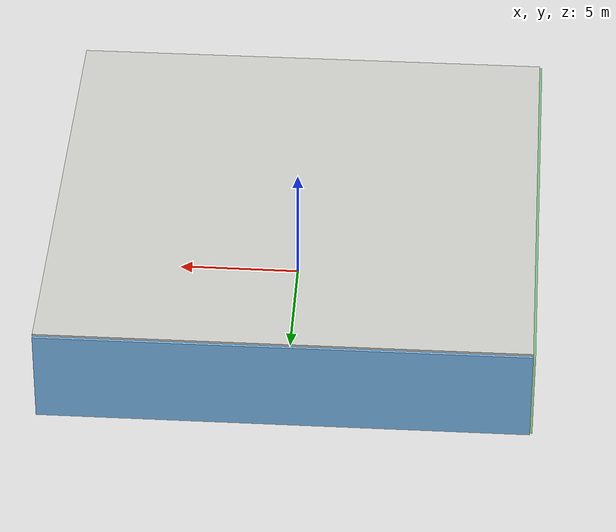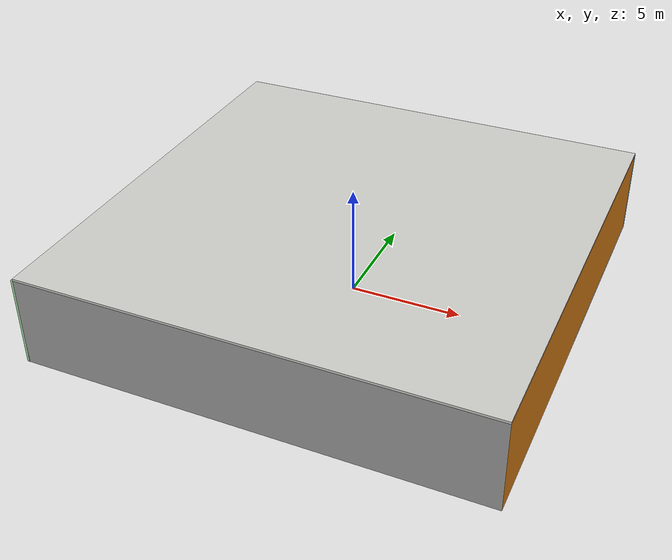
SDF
<sdf version="1.4">
 <world name="default">
  <physics type="ode">
   <max_step_size>0.001</max_step_size>
   <real_time_factor>1</real_time_factor>
   <real_time_update_rate>1000</real_time_update_rate>
   <gravity>0 0 -9.8</gravity>
  </physics>
  <scene><ambient>0.4 0.4 0.4 1</ambient><background>0.7 0.7 0.7 1</background><shadows>1</shadows></scene>
  <model name="Surrounding">
   <static>1</static>
   <link name="Ceiling">
    <collision name="Ceiling_Collision"><geometry><box><size>20 20 0.1</size></box></geometry></collision>
    <visual name="Ceiling_Visual">
     <geometry><box><size>20 20 0.1</size></box></geometry>
     <material>
      <script><uri>file://media/materials/scripts/gazebo.material</uri><name>Gazebo/CeilingTiled</name></script>
     </material>
    </visual>
    <pose>0 0 4.05 0 0 0</pose>
   </link>
   <link name="Wall_South">
    <collision name="Wall_South_Collision">
     <geometry><box><size>20 0 4</size></box></geometry>
     <pose>0 0 2 0 -0 0</pose>
    </collision>
    <visual name="Wall_South_Visual">
     <pose>0 0 2 0 -0 0</pose>
     <geometry><box><size>20 0 4</size></box></geometry>
     <material>
      <script><uri>file://media/materials/scripts/gazebo.material</uri><name>Gazebo/Grey</name></script>
     </material>
    </visual>
    <velocity_decay><linear>0</linear><angular>0</angular></velocity_decay>
    <pose>0 -10 0 0 -0 0</pose>
   </link>
   <link name="Wall_East">
    <collision name="Wall_21_Collision">
     <geometry><box><size>20 0 4</size></box></geometry>
     <pose>0 0 2 0 -0 0</pose>
    </collision>
    <visual name="Wall_21_Visual">
     <pose>0 0 2 0 -0 0</pose>
     <geometry><box><size>20 0 4</size></box></geometry>
     <material>
      <script><uri>file://media/materials/scripts/gazebo.material</uri><name>Gazebo/Orange</name></script>
     </material>
    </visual>
    <velocity_decay><linear>0</linear><angular>0</angular></velocity_decay>
    <pose>10 0 0 0 -0 1.5708</pose>
   </link>
   <link name="Wall_North">
    <collision name="Wall_22_Collision">
     <geometry><box><size>20 0.2 4</size></box></geometry>
     <pose>0 0 2 0 -0 0</pose>
    </collision>
    <visual name="Wall_22_Visual">
     <pose>0 0 2 0 -0 0</pose>
     <geometry><box><size>20 0.2 4</size></box></geometry>
     <material>
      <script><uri>file://media/materials/scripts/gazebo.material</uri><name>Gazebo/SkyBlue</name></script>
     </material>
    </visual>
    <velocity_decay><linear>0</linear><angular>0</angular></velocity_decay>
    <pose>0 10 0 0 -0 0</pose>
   </link>
   <link name="Wall_West">
    <collision name="Wall_23_Collision">
     <geometry><box><size>20 0.2 4</size></box></geometry>
     <pose>0 0 2 0 -0 0</pose>
    </collision>
    <visual name="Wall_23_Visual">
     <pose>0 0 2 0 -0 0</pose>
     <geometry><box><size>20 0.2 4</size></box></geometry>
     <material>
      <script><uri>file://media/materials/scripts/gazebo.material</uri><name>Gazebo/GreenTransparent</name></script>
     </material>
    </visual>
    <velocity_decay><linear>0</linear><angular>0</angular></velocity_decay>
    <pose>-10 0 0 0 0 -1.5708</pose>
   </link>
   <link name="Ground_link">
    <collision name="collision">
     <pose>0 0 .05 0 -0 0</pose>
     <geometry><box><size>20 20 0.1</size></box></geometry>
    </collision>
    <visual name="visual">
     <pose>0 0 .05 0 -0 0</pose>
     <geometry><box><size>20 20 0.1</size></box></geometry>
     <material>
      <script><uri>file://media/materials/scripts/gazebo.material</uri><name>Gazebo/FlatBlack</name></script>
     </material>
    </visual>
   </link>
   <static>1</static>
  </model>
  <spherical_coordinates>
   <surface_model>EARTH_WGS84</surface_model>
   <latitude_deg>0</latitude_deg>
   <longitude_deg>0</longitude_deg>
   <elevation>0</elevation>
   <heading_deg>0</heading_deg>
  </spherical_coordinates>
  <light name="lightball_0" type="diffuse">
   <diffuse>0.8 0.8 0.8 1</diffuse>
   <specular>0.2 0.2 0.2 1</specular>
   <attenuation>
    <range>100</range>
    <constant>0.7</constant>
    <linear>0.01</linear>
    <quadratic>0.001</quadratic>
   </attenuation>
   <direction>-0.5 0.1 -0.9</direction>
   <pose>1.12623727551 9.26178999184 2.68234942973 0 0 0</pose>
  </light>
  <light name="lightball_1" type="diffuse">
   <diffuse>0.8 0.8 0.8 1</diffuse>
   <specular>0.2 0.2 0.2 1</specular>
   <attenuation>
    <range>100</range>
    <constant>0.7</constant>
    <linear>0.01</linear>
    <quadratic>0.001</quadratic>
   </attenuation>
   <direction>-0.5 0.1 -0.9</direction>
   <pose>-7.96884843099 -8.13135852309 0.969418066032 0 0 0</pose>
  </light>
  <light name="lightball_2" type="diffuse">
   <diffuse>0.8 0.8 0.8 1</diffuse>
   <specular>0.2 0.2 0.2 1</specular>
   <attenuation>
    <range>100</range>
    <constant>0.7</constant>
    <linear>0.01</linear>
    <quadratic>0.001</quadratic>
   </attenuation>
   <direction>-0.5 0.1 -0.9</direction>
   <pose>-1.47304790453 9.80765496993 2.19771004866 0 0 0</pose>
  </light>
  <light name="lightball_3" type="diffuse">
   <diffuse>0.8 0.8 0.8 1</diffuse>
   <specular>0.2 0.2 0.2 1</specular>
   <attenuation>
    <range>100</range>
    <constant>0.7</constant>
    <linear>0.01</linear>
    <quadratic>0.001</quadratic>
   </attenuation>
   <direction>-0.5 0.1 -0.9</direction>
   <pose>1.03394055343 -9.53623170024 3.57553495458 0 0 0</pose>
  </light>
  <light name="lightball_4" type="diffuse">
   <diffuse>0.8 0.8 0.8 1</diffuse>
   <specular>0.2 0.2 0.2 1</specular>
   <attenuation>
    <range>100</range>
    <constant>0.7</constant>
    <linear>0.01</linear>
    <quadratic>0.001</quadratic>
   </attenuation>
   <direction>-0.5 0.1 -0.9</direction>
   <pose>7.03847105755 8.72288551493 3.41866660281 0 0 0</pose>
  </light>
  <light name="lightball_5" type="diffuse">
   <diffuse>0.8 0.8 0.8 1</diffuse>
   <specular>0.2 0.2 0.2 1</specular>
   <attenuation>
    <range>100</range>
    <constant>0.7</constant>
    <linear>0.01</linear>
    <quadratic>0.001</quadratic>
   </attenuation>
   <direction>-0.5 0.1 -0.9</direction>
   <pose>8.15591131769 -2.45834185543 3.28484897539 0 0 0</pose>
  </light>
  <light name="lightball_6" type="diffuse">
   <diffuse>0.8 0.8 0.8 1</diffuse>
   <specular>0.2 0.2 0.2 1</specular>
   <attenuation>
    <range>100</range>
    <constant>0.7</constant>
    <linear>0.01</linear>
    <quadratic>0.001</quadratic>
   </attenuation>
   <direction>-0.5 0.1 -0.9</direction>
   <pose>-9.82967744893 -4.84943120278 2.14652491716 0 0 0</pose>
  </light>
  <light name="lightball_7" type="diffuse">
   <diffuse>0.8 0.8 0.8 1</diffuse>
   <specular>0.2 0.2 0.2 1</specular>
   <attenuation>
    <range>100</range>
    <constant>0.7</constant>
    <linear>0.01</linear>
    <quadratic>0.001</quadratic>
   </attenuation>
   <direction>-0.5 0.1 -0.9</direction>
   <pose>-8.80832805877 9.26856927792 2.56778134167 0 0 0</pose>
  </light>
  <light name="lightball_8" type="diffuse">
   <diffuse>0.8 0.8 0.8 1</diffuse>
   <specular>0.2 0.2 0.2 1</specular>
   <attenuation>
    <range>100</range>
    <constant>0.7</constant>
    <linear>0.01</linear>
    <quadratic>0.001</quadratic>
   </attenuation>
   <direction>-0.5 0.1 -0.9</direction>
   <pose>-4.90067514016 1.88550343899 3.04703178886 0 0 0</pose>
  </light>
  <include>
   <uri>model://construction_cone</uri>
   <pose>-2.20866196626 1.39612004223 0 0 0 1.04607503799</pose>
  </include>
  <include><uri>model://cabinet</uri><pose>8.2525670919 -7.28823175037 0 0 0 0.58098145055</pose></include>
  <include><uri>model://cabinet</uri><pose>7.24465240562 -2.20612972336 0 0 0 0.252675800262</pose></include>
 </world>
</sdf>

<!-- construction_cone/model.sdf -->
<sdf version="1.5">
  <model name="Construction Cone">
    <link name="link">
      <collision name="collision">
        <geometry>
          <mesh>
            <scale>10 10 10</scale>
            <uri>file://isr-testbed/construction_cone/meshes/construction_cone.dae</uri>
          </mesh>
        </geometry>
      </collision>
      <visual name="visual">
        <geometry>
          <mesh>
            <scale>10 10 10</scale>
            <uri>file://isr-testbed/construction_cone/meshes/construction_cone.dae</uri>
          </mesh>
        </geometry>
      </visual>
    </link>
  </model>
</sdf>

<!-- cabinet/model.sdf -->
<sdf version="1.5">
  <model name="cabinet">
    <static>true</static>
    <link name="cabinet_bottom_plate">
      <inertial>
        <pose>0 0 -1 0 0 0</pose>
        <inertia>
          <ixx>2.050000</ixx>
          <ixy>0</ixy>
          <ixz>0</ixz>
          <iyy>2.050000</iyy>
          <iyz>0</iyz>
          <izz>2.050000</izz>
        </inertia>
        <mass>25.000000</mass>
      </inertial>
      <collision name="cabinet_bottom_plate_geom">
        <pose>0 0 0.010000 0 0 0</pose>
        <geometry>
          <box>
            <size>0.450000 0.450000 0.020000</size>
          </box>
        </geometry>
      </collision>
      <visual name="cabinet_bottom_plate_geom_visual">
        <pose>0 0 0.010000 0 0 0</pose>
        <geometry>
          <box>
            <size>0.450000 0.450000 0.020000</size>
          </box>
        </geometry>
        <material>
          <script>
            <uri>model://media/materials/scripts/gazebo.material</uri>
            <name>Gazebo/Wood</name>
          </script>
        </material>
      </visual>
      <collision name="cabinet_bottom_plate_geom_cabinet_back_plate">
        <pose>0.235000 0 0.510000 0 0 0</pose>
        <geometry>
          <box>
            <size>0.020000 0.450000 1.020000</size>
          </box>
        </geometry>
      </collision>
      <visual name="cabinet_bottom_plate_geom_cabinet_back_plate_visual">
        <pose>0.235000 0 0.510000 0 0 0</pose>
        <geometry>
          <box>
            <size>0.020000 0.450000 1.020000</size>
          </box>
        </geometry>
        <material>
          <script>
            <uri>model://media/materials/scripts/gazebo.material</uri>
            <name>Gazebo/Wood</name>
          </script>
        </material>
      </visual>
      <collision name="cabinet_bottom_plate_geom_cabinet_left_plate">
        <pose>0 0.235000 0.510000 0 0 0</pose>
        <geometry>
          <box>
            <size>0.450000 0.020000 1.020000</size>
          </box>
        </geometry>
      </collision>
      <visual name="cabinet_bottom_plate_geom_cabinet_left_plate_visual">
        <pose>0 0.235000 0.510000 0 0 0</pose>
        <geometry>
          <box>
            <size>0.450000 0.020000 1.020000</size>
          </box>
        </geometry>
        <material>
          <script>
            <uri>model://media/materials/scripts/gazebo.material</uri>
            <name>Gazebo/Wood</name>
          </script>
        </material>
      </visual>
      <collision name="cabinet_bottom_plate_geom_cabinet_middle_plate">
        <pose>0 0 0.510000 0 0 0</pose>
        <geometry>
          <box>
            <size>0.450000 0.450000 0.020000</size>
          </box>
        </geometry>
      </collision>
      <visual name="cabinet_bottom_plate_geom_cabinet_middle_plate_visual">
        <pose>0 0 0.510000 0 0 0</pose>
        <geometry>
          <box>
            <size>0.450000 0.450000 0.020000</size>
          </box>
        </geometry>
        <material>
          <script>
            <uri>model://media/materials/scripts/gazebo.material</uri>
            <name>Gazebo/Wood</name>
          </script>
        </material>
      </visual>
      <collision name="cabinet_bottom_plate_geom_cabinet_right_plate">
        <pose>0 -0.235000 0.510000 0 0 0</pose>
        <geometry>
          <box>
            <size>0.450000 0.020000 1.020000</size>
          </box>
        </geometry>
      </collision>
      <visual name="cabinet_bottom_plate_geom_cabinet_right_plate_visual">
        <pose>0 -0.235000 0.510000 0 0 0</pose>
        <geometry>
          <box>
            <size>0.450000 0.020000 1.020000</size>
          </box>
        </geometry>
        <material>
          <script>
            <uri>model://media/materials/scripts/gazebo.material</uri>
            <name>Gazebo/Wood</name>
          </script>
        </material>
      </visual>
      <collision name="cabinet_bottom_plate_geom_cabinet_top_plate">
        <pose>0 0 1.010000 0 0 0</pose>
        <geometry>
          <box>
            <size>0.450000 0.450000 0.020000</size>
          </box>
        </geometry>
      </collision>
      <visual name="cabinet_bottom_plate_geom_cabinet_top_plate_visual">
        <pose>0 0 1.010000 0 0 0</pose>
        <geometry>
          <box>
            <size>0.450000 0.450000 0.020000</size>
          </box>
        </geometry>
        <material>
          <script>
            <uri>model://media/materials/scripts/gazebo.material</uri>
            <name>Gazebo/Wood</name>
          </script>
        </material>
      </visual>
    </link>
  </model>
</sdf>
